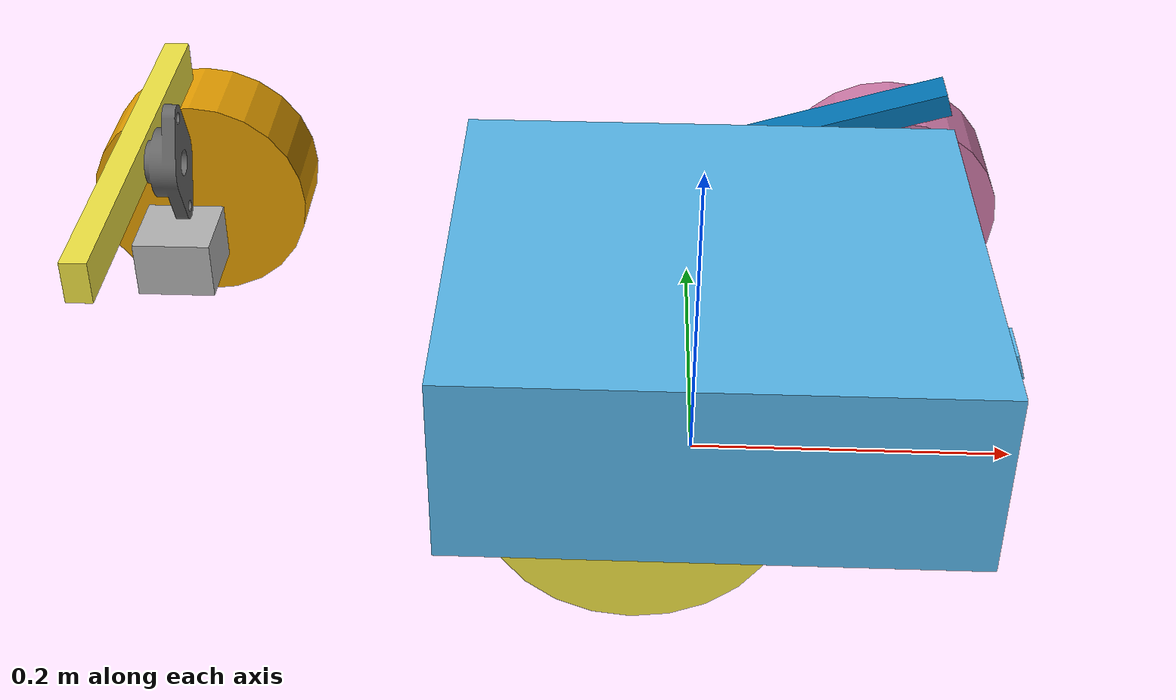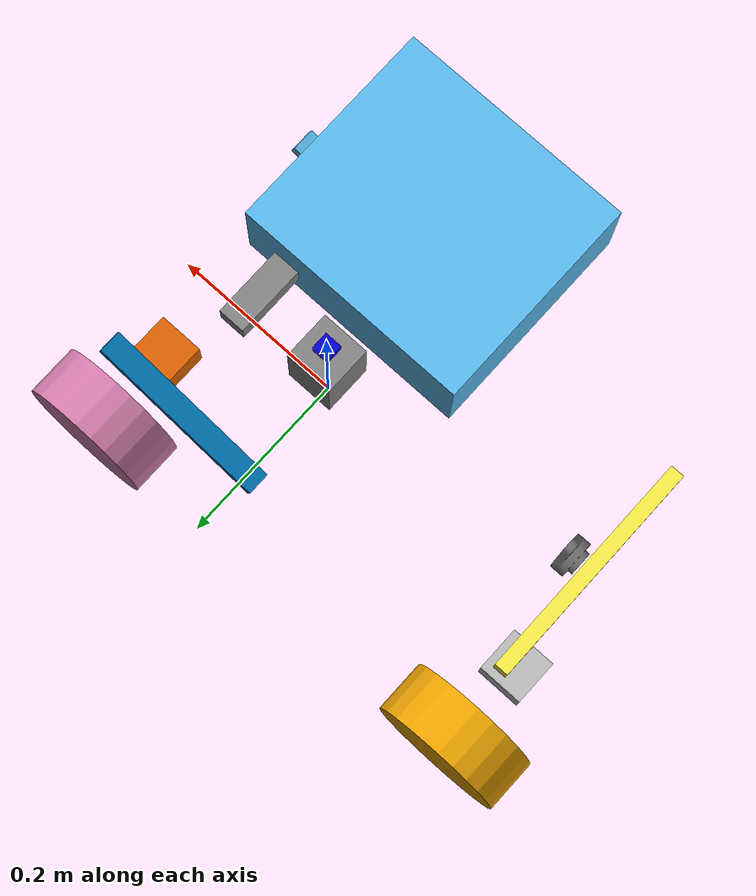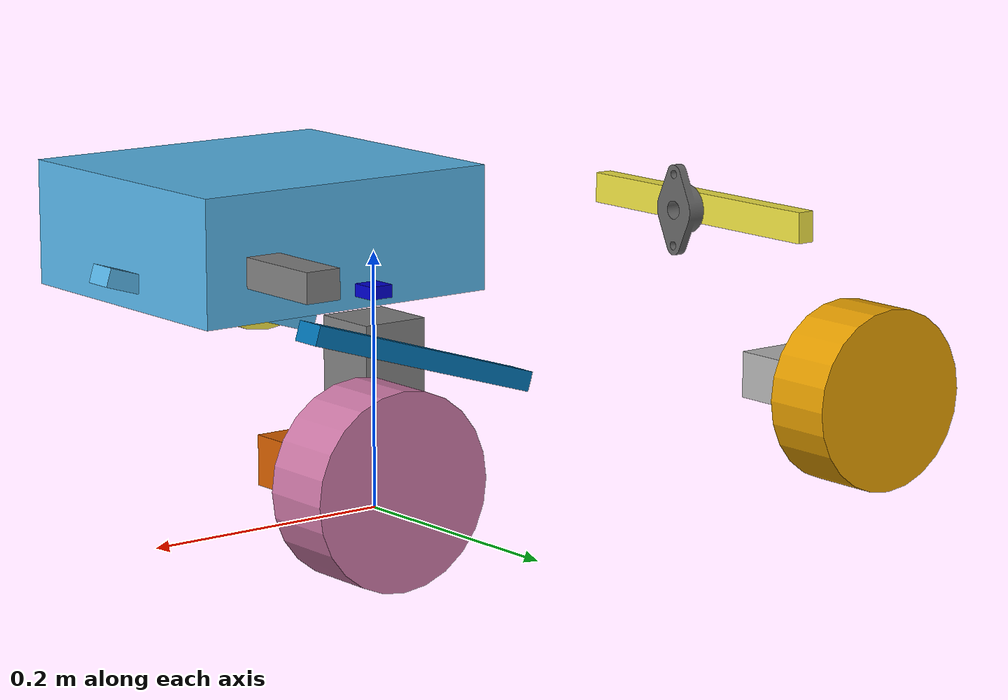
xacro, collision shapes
<?xml version="1.0"?>
<robot xmlns:xacro="http://www.ros.org/wiki/xacro" name="perseus_lite">
  <xacro:arg name="prefix" default="" />
  <xacro:arg name="hardware_plugin" default="perseus_lite_hardware/ST3215SystemHardware" />
  <xacro:arg name="serial_port" default="/dev/ttyACM0" />
  <xacro:arg name="baud_rate" default="1000000" />
  <xacro:arg name="use_sim" default="false" />

  <!-- Import URDF description -->
  <xacro:include filename="$(find perseus_lite_description)/urdf/perseus_lite.urdf.xacro" />
  <!-- Import colours for rviz -->
  <xacro:include filename="$(find perseus_lite_description)/urdf/perseus_lite.materials.xacro" />
  <!-- Import ros2_control description -->
  <xacro:include filename="$(find perseus_lite_description)/ros2_control/perseus_lite.ros2_control.xacro" />

  <!-- Instantiate the description and the ROS2 control information -->
  <xacro:perseus_lite prefix="$(arg prefix)" />
  <xacro:perseus_lite_ros2_control
    name="Perseus_Lite"
    prefix="$(arg prefix)"
    hardware_plugin="$(arg hardware_plugin)"
    serial_port="$(arg serial_port)"
    baud_rate="$(arg baud_rate)"/>

  <xacro:if value="$(arg use_sim)">
    <gazebo>
      <plugin filename="gz_ros2_control-system"
              name="gz_ros2_control::GazeboSimROS2ControlPlugin">
        <parameters>$(find perseus_lite)/config/perseus_lite_controllers.yaml</parameters>
      </plugin>
    </gazebo>
  </xacro:if>
</robot>

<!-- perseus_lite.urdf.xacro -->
<robot xmlns:xacro="http://ros.org/wiki/xacro">
  <xacro:macro name="perseus_lite" params="prefix">
    <!-- Import components -->
    <xacro:include filename="$(find perseus_lite_description)/urdf/chassis.urdf.xacro"/>
    <xacro:include filename="$(find perseus_lite_description)/urdf/rocker.urdf.xacro"/>
    <xacro:include filename="$(find perseus_lite_description)/urdf/sensors.urdf.xacro"/>

    <link name="${prefix}base_link"/>

    <!-- CHASSIS -->
    <xacro:chassis />
    <joint name="${prefix}chassis_joint" type="fixed">
      <origin xyz="0.0 0.0 0.15" rpy="0.0 0.0 0.0"/>
      <parent link="${prefix}base_link"/>
      <child link="${prefix}chassis"/>
    </joint>

    <!-- ROCKER ARMS -->
    <!-- LEFT -->
    <xacro:rocker side="left">
      <origin xyz="-0.0375 0.1375 0.025" rpy="0.0 0.0 0.0"/>
    </xacro:rocker>
    <!-- RIGHT -->
    <xacro:rocker side="right">
      <origin xyz="-0.0375 -0.1375 0.025" rpy="0.0 0.0 0.0"/>
    </xacro:rocker>
    <xacro:sensors>
    </xacro:sensors>
  </xacro:macro>
</robot>

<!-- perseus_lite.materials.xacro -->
<robot xmlns:xacro="http://www.ros.org/wiki/xacro">

  <material name="black">
    <color rgba="0.0 0.0 0.0 1.0"/>
  </material>

  <material name="dark">
    <color rgba="0.3 0.3 0.3 1.0"/>
  </material>

  <material name="light_black">
    <color rgba="0.4 0.4 0.4 1.0"/>
  </material>

  <material name="blue">
    <color rgba="0.0 0.0 0.8 1.0"/>
  </material>

  <material name="green">
    <color rgba="0.0 0.8 0.0 1.0"/>
  </material>

  <material name="grey">
    <color rgba="0.5 0.5 0.5 1.0"/>
  </material>

  <material name="orange">
    <color rgba="1.0 0.423529411765 0.0392156862745 1.0"/>
  </material>

  <material name="brown">
    <color rgba="0.870588235294 0.811764705882 0.764705882353 1.0"/>
  </material>

  <material name="red">
    <color rgba="0.8 0.0 0.0 1.0"/>
  </material>

  <material name="white">
    <color rgba="1.0 1.0 1.0 1.0"/>
  </material>

</robot>

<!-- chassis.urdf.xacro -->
<robot name="chassis" xmlns:xacro="http://ros.org/wiki/xacro">
  <!-- Contains base rover chassis and balance bar -->
  <xacro:macro name="chassis" params="prefix:=^">
    <!-- CHASSIS -->
    <link name="${prefix}chassis">
       <inertial>
        <!-- Scaled inertial properties for Perseus Lite -->
        <origin xyz="0.0 -0.08550236602 0.07366242988" rpy="0 0 0"/>
        <mass value="1.38449701513"/> <!-- Scaled by 0.5 -->
        <!-- Updated inertia values using square scaling factor (0.5^2 = 0.25) -->
        <inertia ixx="0.005327" iyy="0.002894" izz="0.007011"
                 ixy="0.0" iyz="0.000169" ixz="-0.0"/>
      </inertial>

      <visual>
        <origin xyz="0.0 0.0 0.0" rpy="0 0.0 ${-pi/2}"/>
        <geometry>
          <mesh scale="0.05 0.05 0.05" filename="file://$(find perseus_description)/meshes/chassis.dae"/>
        </geometry>
      </visual>

      <collision>
        <origin xyz="0.0 -0.15 0.05" rpy="0 0.0 ${-pi/2}"/>
        <geometry>
          <box size="0.2375 0.2625 0.1" />
        </geometry>
      </collision>
    </link>

    <!-- Flange Bearing -->
    <link name="${prefix}flange_bearing">
      <inertial>
        <origin xyz="0.0 0.0 0.0" rpy="0 0 0"/>
        <mass value="0.6637443674696325"/>
        <inertia ixx="0.000164" iyy="0.000212" izz="0.000081"
                 ixy="0.0" iyz="0.0" ixz="-0.0"/>
      </inertial>

      <visual>
        <origin xyz="0.0 0.0 0.0" rpy="0 0 0"/>
        <geometry>
          <mesh scale="0.05 0.05 0.05" filename="file://$(find perseus_description)/meshes/flange_bearing.dae"/>
        </geometry>
      </visual>

      <collision>
        <origin xyz="0.0 0.0 0.0" rpy="0 0 0"/>
        <geometry>
          <mesh scale="0.05 0.05 0.05" filename="file://$(find perseus_description)/meshes/flange_bearing.dae"/>
        </geometry>
      </collision>
    </link>

    <joint name="${prefix}flange_bearing_joint" type="fixed">
      <origin xyz="-0.3 -0.0 0.05" rpy="0 ${-pi/2} 0.0"/>
      <parent link="${prefix}chassis"/>
      <child link="${prefix}flange_bearing"/>
    </joint>

    <!-- Balance/differential bar -->
    <link name="${prefix}differential_bar">
      <inertial>
        <origin xyz="-0.0006050564992 -0.02287436340 0.0" rpy="0.0 0.0 0.0"/>
        <mass value="0.4586324759064"/>
        <inertia ixx="0.000045" iyy="0.002292" izz="0.002267"
                 ixy="0.0000004" iyz="-0.0" ixz="0.0"/>
      </inertial>

      <visual>
        <origin xyz="0.0 0.0 0.0" rpy="0.0 0.0 0.0"/>
        <geometry>
          <mesh scale="0.05 0.05 0.05" filename="file://$(find perseus_description)/meshes/differential_bar.dae"/>
        </geometry>
      </visual>

      <collision>
        <origin xyz="0.0 0.0 -0.005" rpy="0.0 0.0 0.0"/>
        <geometry>
          <box size="0.25 0.025 0.015" />
        </geometry>
      </collision>
    </link>

    <joint name="${prefix}differential_bar_joint" type="fixed">
      <origin xyz="0.0 0.0 0.025" rpy="${pi} 0.0 ${-pi/2}"/>
      <axis xyz="0.0 0.0 1.0"/>
      <parent link="${prefix}flange_bearing"/>
      <child link="${prefix}differential_bar"/>
    </joint>
  </xacro:macro>
</robot>

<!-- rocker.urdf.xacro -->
<robot name="rocker" xmlns:xacro="http://www.ros.org/wiki/xacro">

  <xacro:include filename="$(find perseus_lite_description)/urdf/motor_wheel.urdf.xacro"/>

  <xacro:macro name="rocker" params="prefix:=^ side *origin">
    <!-- ROCKER ARM -->
    <link name="${prefix}${side}_rocker">
      <inertial>
        <origin xyz="0.005909593700425542 -0.04168669827007379 -0.03369548035494997" rpy="0.0 0.0 0.0"/>
        <!-- RIGHT -->
        <xacro:if value="${side == 'right'}">
          <inertia ixx="0.009778" iyy="0.0012455" izz="0.009566" ixy="0.000462625" iyz="-0.00085575" ixz="0.0003725"/>
        </xacro:if>
        <!-- LEFT -->
        <xacro:if value="${side == 'left'}">
          <inertia ixx="0.009778" iyy="0.0012455" izz="0.009566" ixy="0.000462625" iyz="-0.00085575" ixz="0.0003725"/>
        </xacro:if>
        <mass value="0.6273071019756242"/>
      </inertial>

      <visual>
        <origin xyz="0.0 0.0 0.0" rpy="0.0 0.0 ${pi}"/>
        <geometry>
          <mesh scale="0.05 0.05 0.05" filename="file://$(find perseus_description)/meshes/rocker_${side}.dae"/>
        </geometry>
      </visual>
      <collision>
        <origin xyz="0.1 0.0 -0.025" rpy="0.0 0.3 ${pi}"/>
        <geometry>
          <box size="0.2 0.025 0.015" />
        </geometry>
      </collision>
    </link>

    <joint name="${prefix}${side}_rocker_joint" type="fixed">
      <xacro:insert_block name="origin"/>
      <parent link="${prefix}chassis"/>
      <child link="${prefix}${side}_rocker"/>
    </joint>

    <!-- FRONT MOTOR -->
    <xacro:motor_wheel end="front">
      <xacro:if value="${side == 'left'}">
        <origin xyz="0.17 -0.04 -0.1" rpy="0.0 0.0 0.0"/>
      </xacro:if>
      <xacro:if value="${side == 'right'}">
        <origin xyz="0.17 0.04 -0.1" rpy="0.0 0.0 0.0"/>
      </xacro:if>
    </xacro:motor_wheel>

    <!-- REAR MOTOR -->
    <xacro:motor_wheel end="rear">
      <xacro:if value="${side == 'left'}">
        <origin xyz="-0.30 -0.04 -0.1" rpy="0.0 0.0 0.0"/>
      </xacro:if>
      <xacro:if value="${side == 'right'}">
        <origin xyz="-0.30 0.04 -0.1" rpy="0.0 0.0 0.0"/>
      </xacro:if>
    </xacro:motor_wheel>
  </xacro:macro>
</robot>

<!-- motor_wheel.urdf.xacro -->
<robot name="motor_wheel" xmlns:xacro="http://www.ros.org/wiki/xacro">
  <xacro:include filename="$(find perseus_lite_description)/urdf/wheel.urdf.xacro"/>

  <!-- MOTOR JOINT -->
  <xacro:macro name="motor_wheel" params="prefix:=^ side:=^ end *origin">
    <link name="${prefix}${end}_${side}_motor">
      <inertial>
        <origin xyz="0.0 0.0 0.0" rpy="0.0 0.0 0.0"/>
        <mass value="2.6182895"/>
        <inertia ixx="0.00125" iyy="0.00125" izz="0.00125" ixy="0.0" iyz="0.0" ixz="0.0"/>
      </inertial>

      <visual>
        <xacro:if value="${side == 'left'}">
          <origin xyz="0.0 0.0 0.0" rpy="0.0 0.0 ${-pi/2}"/>
        </xacro:if>
        <xacro:if value="${side == 'right'}">
          <origin xyz="0.0 0.0 0.0" rpy="0.0 0.0 ${pi/2}"/>
        </xacro:if>
        <geometry>
          <mesh scale="0.05 0.05 0.05" filename="file://$(find perseus_description)/meshes/gearbox.dae"/>
        </geometry>
      </visual>

      <collision>
        <xacro:if value="${side == 'left'}">
          <origin xyz="0.0 0.0 0.0" rpy="0.0 0.0 ${pi/2}"/>
        </xacro:if>
        <xacro:if value="${side == 'right'}">
          <origin xyz="0.0 0.0 0.0" rpy="0.0 0.0 ${-pi/2}"/>
        </xacro:if>
        <geometry>
          <box size="0.05 0.05 0.0375" />
        </geometry>
      </collision>
    </link>

    <!-- JOINT -->
    <joint name="${prefix}${end}_${side}_motor_joint" type="fixed">
      <parent link="${prefix}${side}_rocker"/>
      <child link="${prefix}${end}_${side}_motor"/>
      <xacro:insert_block name="origin"/>
    </joint>

    <!-- TRANSMISSION -->

    <xacro:wheel />
  </xacro:macro>
</robot>

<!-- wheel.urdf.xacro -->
<robot name="wheel" xmlns:xacro="http://ros.org/wiki/xacro">
  <xacro:property name="wheel_radius" value="0.0725"/>
  <xacro:property name="wheel_length" value="0.0575"/>
  <xacro:property name="wheel_mass" value="0.005"/>
  <xacro:property name="wheels_y_offset" value="0.09"/>

  <xacro:macro name="wheel" params="prefix:=^ side:=^ end:=^">
    <link name="${prefix}${end}_${side}_wheel">
      <inertial>
        <origin xyz="0.0 0.0 0.0" rpy="0.0 0.0 0.0"/>
        <mass value="${wheel_mass}"/>
        <inertia ixx="0.006434" iyy="0.003644" izz="0.003644"
                 ixy="0.0" iyz="0.0" ixz="0.0"/>
      </inertial>

      <visual>
        <!-- Rotate mesh so tread pattern faces outward -->
        <xacro:if value="${side == 'left'}">
          <origin xyz="0.0 0.0 0.0" rpy="0.0 0.0 ${pi}"/>
        </xacro:if>
        <xacro:if value="${side == 'right'}">
          <origin xyz="0.0 0.0 0.0" rpy="0.0 0.0 0.0"/>
        </xacro:if>
        <geometry>
          <mesh scale="0.1 0.1 0.1" filename="file://$(find perseus_lite_description)/meshes/wheel.dae"/>
        </geometry>
      </visual>

      <collision>
        <!-- Rotate cylinder 90° around X to align with Y axis (wheel axle) -->
        <origin xyz="0.0 0.0 0.0" rpy="${pi/2} 0.0 0.0"/>
        <geometry>
          <cylinder radius="${wheel_radius}" length="${wheel_length}"/>
        </geometry>
      </collision>
    </link>

    <!-- WHEEL JOINT -->
    <joint name="${prefix}${end}_${side}_wheel_joint" type="continuous">
      <parent link="${prefix}${end}_${side}_motor"/>
      <child link="${prefix}${end}_${side}_wheel"/>
      <xacro:if value="${side == 'left'}">
        <origin xyz="0.0 ${wheels_y_offset} 0.0" rpy="0.0 0.0 0.0"/>
        <axis xyz="0 -1 0"/>
      </xacro:if>
      <xacro:if value="${side == 'right'}">
        <origin xyz="0.0 ${-wheels_y_offset} 0.0" rpy="0.0 0.0 0.0"/>
        <axis xyz="0 1 0"/>
      </xacro:if>
      <dynamics damping="0.2" friction="0.3"/>
    </joint>

  <transmission name="${prefix}${end}_${side}_wheel_trans">
    <type>transmission_interface/SimpleTransmission</type>
      <joint name="${prefix}${end}_${side}_wheel_joint">
        <command_interface name="velocity"/>
        <state_interface name="position"/>
        <state_interface name="velocity"/>
        <state_interface name="temperature"/>
      </joint>
      <actuator name="${prefix}${end}_${side}_wheel_motor">
        <mechanical_reduction>1.0</mechanical_reduction>
      </actuator>
    </transmission>

  </xacro:macro>
</robot>

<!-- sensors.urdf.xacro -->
<robot xmlns:xacro="http://www.ros.org/wiki/xacro" >
  <xacro:macro name="sensors" params="prefix:=^">
    <link name="${prefix}c1_lidar_frame">
        <inertial>
            <mass value="0.165"/>
            <origin xyz="0 0 0" rpy="0 0 0"/>
            <inertia ixx="0.0001" ixy="0" ixz="0"
                     iyy="0.0001" iyz="0"
                     izz="0.0001"/>
        </inertial>
        <visual>
            <origin xyz="0 0 0" rpy="0 0 0"/>
            <geometry>
                <box size="0.055 0.055 0.080"/>
            </geometry>
            <material name="grey"/>
        </visual>
        <collision>
            <origin xyz="0 0 0" rpy="0 0 0"/>
            <geometry>
                <box size="0.055 0.055 0.080"/>
            </geometry>
        </collision>
    </link>

    <joint name="${prefix}c1_lidar_joint" type="fixed">
        <parent link="${prefix}chassis"/>
        <child link="${prefix}c1_lidar_frame"/>
        <!-- Lidar mounted at center of chassis, underneath, flipped upside down -->
        <origin xyz="0.0 0.0 -0.04" rpy="${pi} 0 0"/>
    </joint>

    <gazebo reference="${prefix}c1_lidar_frame">
        <material>Gazebo/Black</material>
        <sensor name="laser" type="gpu_lidar">
            <pose>0 0 0 0 0 0</pose>
            <visualize>true</visualize>
            <update_rate>10</update_rate>
            <topic>scan</topic>
            <ray>
                <scan>
                    <horizontal>
                        <samples>360</samples>
                        <min_angle>-3.14</min_angle>
                        <max_angle>3.14</max_angle>
                    </horizontal>
                </scan>
                <range>
                    <min>0.3</min>
                    <max>12</max>
                </range>
            </ray>
            <frame>${prefix}c1_lidar_frame</frame>
        </sensor>
    </gazebo>

    <!-- IMU Sensor -->
    <link name="${prefix}imu_link">
        <inertial>
            <mass value="0.001"/>
            <origin xyz="0 0 0" rpy="0 0 0"/>
            <inertia ixx="0.0001" ixy="0" ixz="0"
                     iyy="0.0001" iyz="0"
                     izz="0.0001"/>
        </inertial>
        <visual>
            <origin xyz="0 0 0" rpy="0 0 0"/>
            <geometry>
                <box size="0.02 0.02 0.01"/>
            </geometry>
            <material name="blue"/>
        </visual>
        <collision>
            <origin xyz="0 0 0" rpy="0 0 0"/>
            <geometry>
                <box size="0.02 0.02 0.01"/>
            </geometry>
        </collision>
    </link>

    <joint name="${prefix}imu_joint" type="fixed">
        <parent link="${prefix}chassis"/>
        <child link="${prefix}imu_link"/>
        <origin xyz="0.0 0.0 0.02" rpy="0 0 0"/>
    </joint>

    <gazebo reference="${prefix}imu_link">
        <material>Gazebo/Blue</material>
        <sensor name="imu" type="imu">
            <pose>0 0 0 0 0 0</pose>
            <always_on>true</always_on>
            <update_rate>100</update_rate>
            <topic>imu/data</topic>
            <frame>${prefix}imu_link</frame>
            <imu>
                <angular_velocity>
                    <x>
                        <noise type="gaussian">
                            <mean>0.0</mean>
                            <stddev>2e-4</stddev>
                        </noise>
                    </x>
                    <y>
                        <noise type="gaussian">
                            <mean>0.0</mean>
                            <stddev>2e-4</stddev>
                        </noise>
                    </y>
                    <z>
                        <noise type="gaussian">
                            <mean>0.0</mean>
                            <stddev>2e-4</stddev>
                        </noise>
                    </z>
                </angular_velocity>
                <linear_acceleration>
                    <x>
                        <noise type="gaussian">
                            <mean>0.0</mean>
                            <stddev>1.7e-2</stddev>
                        </noise>
                    </x>
                    <y>
                        <noise type="gaussian">
                            <mean>0.0</mean>
                            <stddev>1.7e-2</stddev>
                        </noise>
                    </y>
                    <z>
                        <noise type="gaussian">
                            <mean>0.0</mean>
                            <stddev>1.7e-2</stddev>
                        </noise>
                    </z>
                </linear_acceleration>
            </imu>
        </sensor>
    </gazebo>
    <!-- Camera (Logitech C920) -->
    <link name="${prefix}camera_link">
        <inertial>
            <mass value="0.162"/>
            <origin xyz="0 0 0" rpy="0 0 0"/>
            <inertia ixx="0.0001" ixy="0" ixz="0"
                     iyy="0.0001" iyz="0"
                     izz="0.0001"/>
        </inertial>
        <visual>
            <origin xyz="0 0 0" rpy="0 0 0"/>
            <geometry>
                <box size="0.03 0.094 0.024"/>
            </geometry>
            <material name="grey"/>
        </visual>
        <collision>
            <origin xyz="0 0 0" rpy="0 0 0"/>
            <geometry>
                <box size="0.03 0.094 0.024"/>
            </geometry>
        </collision>
    </link>

    <joint name="${prefix}camera_joint" type="fixed">
        <parent link="${prefix}chassis"/>
        <child link="${prefix}camera_link"/>
        <!-- Mounted on top of chassis, front-facing -->
        <origin xyz="0.08 0.0 0.04" rpy="0 0 0"/>
    </joint>

    <link name="${prefix}camera_optical_frame"/>

    <joint name="${prefix}camera_optical_joint" type="fixed">
        <parent link="${prefix}camera_link"/>
        <child link="${prefix}camera_optical_frame"/>
        <!-- Rotate to optical frame convention: Z-forward, X-right, Y-down -->
        <origin xyz="0 0 0" rpy="${-pi/2} 0 ${-pi/2}"/>
    </joint>
  </xacro:macro>
</robot>
